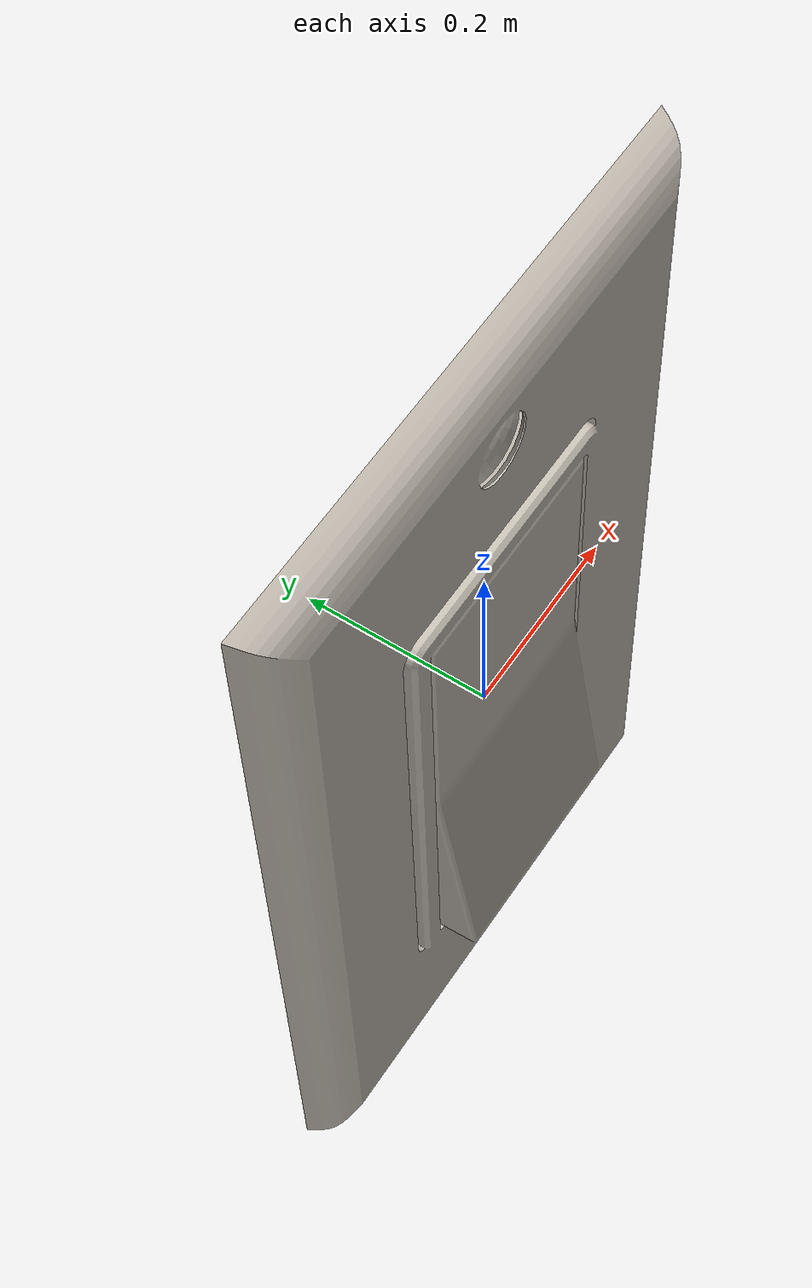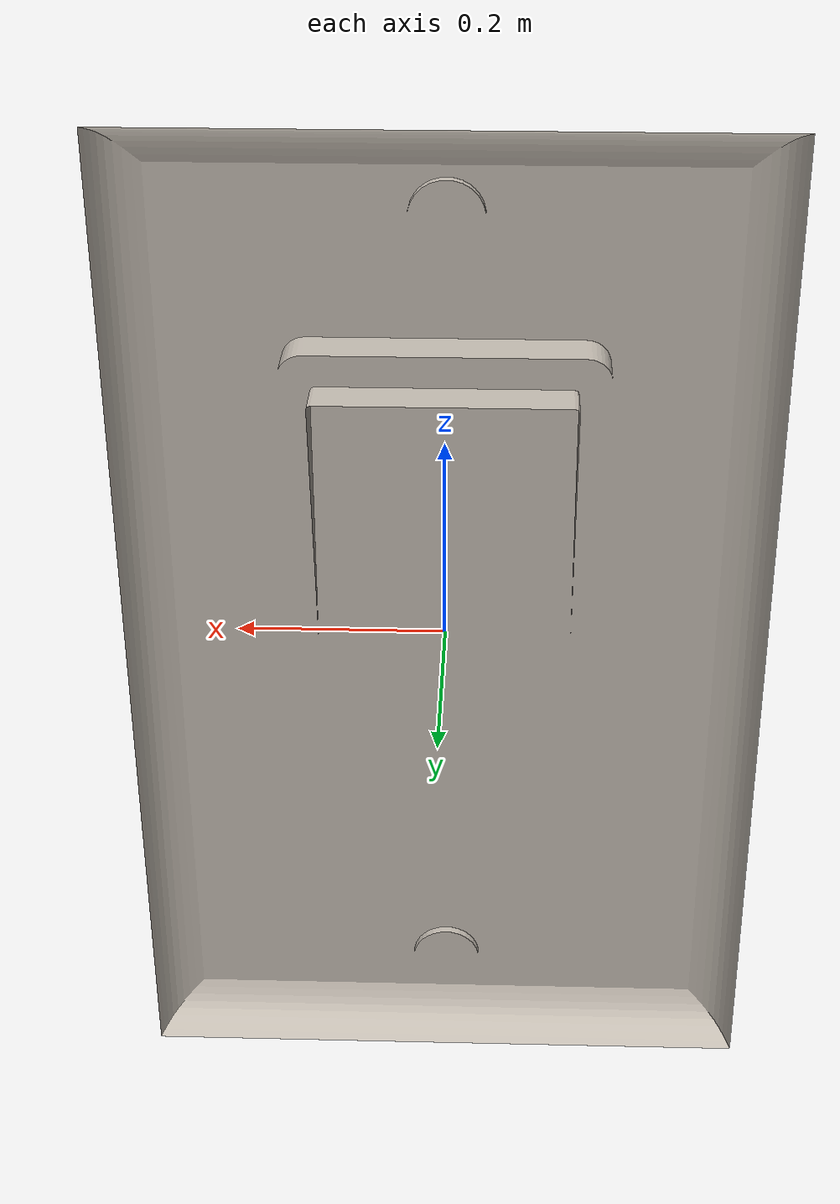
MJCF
<mujoco model="light_switch">
  <compiler angle="radian"/>
  <asset>
    <texture file="visuals/material_0.png" name="tex-light_switch" type="2d"/>
    <texture type="2d" name="image0" file="visuals/image0.png"/>
    <material name="light_switch" reflectance="0.5" texrepeat="1 1" texture="tex-light_switch" texuniform="false"/>
    <material name="lightswitch" texture="image0" specular="0.5" shininess="0.25"/>
    <mesh file="visuals/light_switch_0.obj" name="light_switch_0_vis" scale="1 1 1"/>
  </asset>
  <default>
    <default class="visual">
      <geom conaffinity="0" contype="0" group="1" type="mesh"/>
    </default>
    <default class="collision">
      <geom group="0" rgba="0.5 0 0 0.5"/>
    </default>
  </default>
  <worldbody>
    <body>
      <!-- exterior bounding box points -->
      <site rgba="1 1 1 1" size="0.01" pos="0 0 0" name="ext_p0"/>
      <site rgba="1 0 0 1" size="0.01" pos="0 0 0" name="ext_px"/>
      <site rgba="0 1 0 1" size="0.01" pos="0 0 0" name="ext_py"/>
      <site rgba="0 0 1 1" size="0.01" pos="0 0 0" name="ext_pz"/>
      <!-- interior bounding box points -->
      <site rgba="1 1 1 1" size="0.01" pos="0 0 0" name="int_p0"/>
      <site rgba="1 1 0 1" size="0.01" pos="0 0 0" name="int_px"/>
      <site rgba="0 1 1 1" size="0.01" pos="0 0 0" name="int_py"/>
      <site rgba="1 0 1 1" size="0.01" pos="0 0 0" name="int_pz"/>
      <body name="object" euler="0 0 -1.57">
        <geom solimp="0.998 0.998 0.001" solref="0.001 1" density="100" friction="0.95 0.3 0.1" type="mesh" mesh="light_switch_0_vis" material="lightswitch" class="visual"/>
      </body>
    </body>
  </worldbody>
</mujoco>
